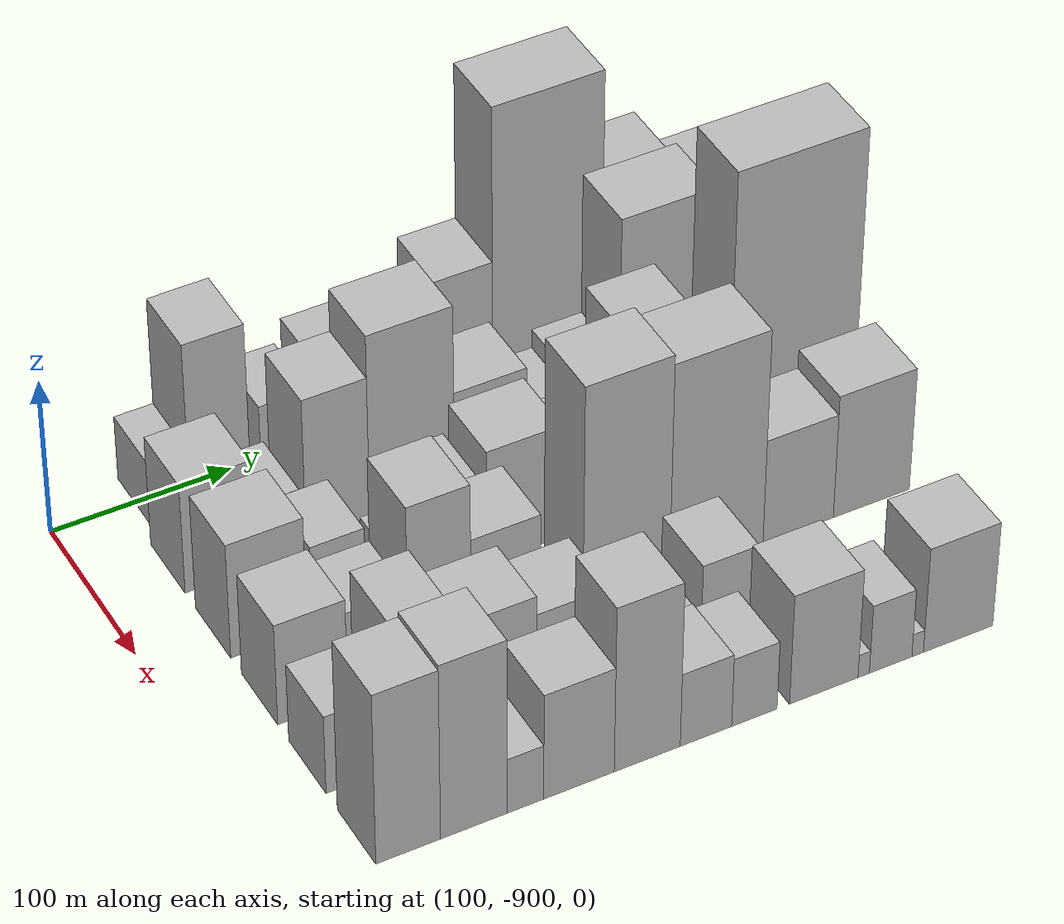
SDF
<sdf version="1.6">
 <world name="default">
  <model name="building_1">
   <static>1</static>
   <pose>100.0000 -843.1240 0 0.000000 0.000000 0.000000</pose>
   <link name="link">
    <pose>0 0 21.00 0 0 0</pose>
    <collision name="collision"><geometry><box><size>40.0000 21.7520 42.0000</size></box></geometry></collision>
    <visual name="visual">
     <cast_shadows>0</cast_shadows>
     <geometry><box><size>40.0000 21.7520 42.0000</size></box></geometry>
     <material>
      <script>
       <uri>model://HANNAS_wall/materials/scripts</uri>
       <uri>model://HANNAS_wall/materials/textures</uri>
       <name>vrc/HANNAS_wall</name>
      </script>
     </material>
    </visual>
   </link>
  </model>
  <model name="building_2">
   <static>1</static>
   <pose>100.0000 -815.2978 0 0.000000 0.000000 0.000000</pose>
   <link name="link">
    <pose>0 0 55.50 0 0 0</pose>
    <collision name="collision"><geometry><box><size>40.0000 33.9005 111.0000</size></box></geometry></collision>
    <visual name="visual">
     <cast_shadows>0</cast_shadows>
     <geometry><box><size>40.0000 33.9005 111.0000</size></box></geometry>
     <material>
      <script>
       <uri>model://HANNAS_wall/materials/scripts</uri>
       <uri>model://HANNAS_wall/materials/textures</uri>
       <name>vrc/HANNAS_wall</name>
      </script>
     </material>
    </visual>
   </link>
  </model>
  <model name="building_3">
   <static>1</static>
   <pose>100.0000 -778.2248 0 0.000000 0.000000 0.000000</pose>
   <link name="link">
    <pose>0 0 27.00 0 0 0</pose>
    <collision name="collision"><geometry><box><size>40.0000 28.2455 54.0000</size></box></geometry></collision>
    <visual name="visual">
     <cast_shadows>0</cast_shadows>
     <geometry><box><size>40.0000 28.2455 54.0000</size></box></geometry>
     <material>
      <script>
       <uri>model://HANNAS_wall/materials/scripts</uri>
       <uri>model://HANNAS_wall/materials/textures</uri>
       <name>vrc/HANNAS_wall</name>
      </script>
     </material>
    </visual>
   </link>
  </model>
  <model name="building_4">
   <static>1</static>
   <pose>100.0000 -742.1856 0 0.000000 0.000000 0.000000</pose>
   <link name="link">
    <pose>0 0 34.50 0 0 0</pose>
    <collision name="collision"><geometry><box><size>40.0000 35.8328 69.0000</size></box></geometry></collision>
    <visual name="visual">
     <cast_shadows>0</cast_shadows>
     <geometry><box><size>40.0000 35.8328 69.0000</size></box></geometry>
     <material>
      <script>
       <uri>model://HANNAS_wall/materials/scripts</uri>
       <uri>model://HANNAS_wall/materials/textures</uri>
       <name>vrc/HANNAS_wall</name>
      </script>
     </material>
    </visual>
   </link>
  </model>
  <model name="building_5">
   <static>1</static>
   <pose>100.0000 -708.8529 0 0.000000 0.000000 0.000000</pose>
   <link name="link">
    <pose>0 0 24.00 0 0 0</pose>
    <collision name="collision"><geometry><box><size>40.0000 24.8327 48.0000</size></box></geometry></collision>
    <visual name="visual">
     <cast_shadows>0</cast_shadows>
     <geometry><box><size>40.0000 24.8327 48.0000</size></box></geometry>
     <material>
      <script>
       <uri>model://HANNAS_wall/materials/scripts</uri>
       <uri>model://HANNAS_wall/materials/textures</uri>
       <name>vrc/HANNAS_wall</name>
      </script>
     </material>
    </visual>
   </link>
  </model>
  <model name="building_6">
   <static>1</static>
   <pose>100.0000 -676.8065 0 0.000000 0.000000 0.000000</pose>
   <link name="link">
    <pose>0 0 48.00 0 0 0</pose>
    <collision name="collision"><geometry><box><size>40.0000 33.2600 96.0000</size></box></geometry></collision>
    <visual name="visual">
     <cast_shadows>0</cast_shadows>
     <geometry><box><size>40.0000 33.2600 96.0000</size></box></geometry>
     <material>
      <script>
       <uri>model://HANNAS_wall/materials/scripts</uri>
       <uri>model://HANNAS_wall/materials/textures</uri>
       <name>vrc/HANNAS_wall</name>
      </script>
     </material>
    </visual>
   </link>
  </model>
  <model name="building_7">
   <static>1</static>
   <pose>100.0000 -628.3598 0 0.000000 0.000000 0.000000</pose>
   <link name="link">
    <pose>0 0 97.50 0 0 0</pose>
    <collision name="collision"><geometry><box><size>40.0000 63.6335 195.0000</size></box></geometry></collision>
    <visual name="visual">
     <cast_shadows>0</cast_shadows>
     <geometry><box><size>40.0000 63.6335 195.0000</size></box></geometry>
     <material>
      <script>
       <uri>model://HANNAS_wall/materials/scripts</uri>
       <uri>model://HANNAS_wall/materials/textures</uri>
       <name>vrc/HANNAS_wall</name>
      </script>
     </material>
    </visual>
   </link>
  </model>
  <model name="building_8">
   <static>1</static>
   <pose>100.0000 -576.6208 0 0.000000 0.000000 0.000000</pose>
   <link name="link">
    <pose>0 0 63.00 0 0 0</pose>
    <collision name="collision"><geometry><box><size>40.0000 39.8445 126.0000</size></box></geometry></collision>
    <visual name="visual">
     <cast_shadows>0</cast_shadows>
     <geometry><box><size>40.0000 39.8445 126.0000</size></box></geometry>
     <material>
      <script>
       <uri>model://HANNAS_wall/materials/scripts</uri>
       <uri>model://HANNAS_wall/materials/textures</uri>
       <name>vrc/HANNAS_wall</name>
      </script>
     </material>
    </visual>
   </link>
  </model>
  <model name="building_9">
   <static>1</static>
   <pose>100.0000 -552.2339 0 0.000000 0.000000 0.000000</pose>
   <link name="link">
    <pose>0 0 9.00 0 0 0</pose>
    <collision name="collision"><geometry><box><size>40.0000 8.9292 18.0000</size></box></geometry></collision>
    <visual name="visual">
     <cast_shadows>0</cast_shadows>
     <geometry><box><size>40.0000 8.9292 18.0000</size></box></geometry>
     <material>
      <script>
       <uri>model://HANNAS_wall/materials/scripts</uri>
       <uri>model://HANNAS_wall/materials/textures</uri>
       <name>vrc/HANNAS_wall</name>
      </script>
     </material>
    </visual>
   </link>
  </model>
  <model name="building_10">
   <static>1</static>
   <pose>100.0000 -531.4667 0 0.000000 0.000000 0.000000</pose>
   <link name="link">
    <pose>0 0 51.00 0 0 0</pose>
    <collision name="collision"><geometry><box><size>40.0000 32.6054 102.0000</size></box></geometry></collision>
    <visual name="visual">
     <cast_shadows>0</cast_shadows>
     <geometry><box><size>40.0000 32.6054 102.0000</size></box></geometry>
     <material>
      <script>
       <uri>model://HANNAS_wall/materials/scripts</uri>
       <uri>model://HANNAS_wall/materials/textures</uri>
       <name>vrc/HANNAS_wall</name>
      </script>
     </material>
    </visual>
   </link>
  </model>
  <model name="building_48">
   <static>1</static>
   <pose>152.0000 -840.8286 0 0.000000 0.000000 0.000000</pose>
   <link name="link">
    <pose>0 0 36.00 0 0 0</pose>
    <collision name="collision"><geometry><box><size>40.0000 38.3429 72.0000</size></box></geometry></collision>
    <visual name="visual">
     <cast_shadows>0</cast_shadows>
     <geometry><box><size>40.0000 38.3429 72.0000</size></box></geometry>
     <material>
      <script>
       <uri>model://HANNAS_wall/materials/scripts</uri>
       <uri>model://HANNAS_wall/materials/textures</uri>
       <name>vrc/HANNAS_wall</name>
      </script>
     </material>
    </visual>
   </link>
  </model>
  <model name="building_49">
   <static>1</static>
   <pose>152.0000 -806.8243 0 0.000000 0.000000 0.000000</pose>
   <link name="link">
    <pose>0 0 21.00 0 0 0</pose>
    <collision name="collision"><geometry><box><size>40.0000 21.6656 42.0000</size></box></geometry></collision>
    <visual name="visual">
     <cast_shadows>0</cast_shadows>
     <geometry><box><size>40.0000 21.6656 42.0000</size></box></geometry>
     <material>
      <script>
       <uri>model://HANNAS_wall/materials/scripts</uri>
       <uri>model://HANNAS_wall/materials/textures</uri>
       <name>vrc/HANNAS_wall</name>
      </script>
     </material>
    </visual>
   </link>
  </model>
  <model name="building_50">
   <static>1</static>
   <pose>152.0000 -775.1812 0 0.000000 0.000000 0.000000</pose>
   <link name="link">
    <pose>0 0 49.50 0 0 0</pose>
    <collision name="collision"><geometry><box><size>40.0000 35.6205 99.0000</size></box></geometry></collision>
    <visual name="visual">
     <cast_shadows>0</cast_shadows>
     <geometry><box><size>40.0000 35.6205 99.0000</size></box></geometry>
     <material>
      <script>
       <uri>model://HANNAS_wall/materials/scripts</uri>
       <uri>model://HANNAS_wall/materials/textures</uri>
       <name>vrc/HANNAS_wall</name>
      </script>
     </material>
    </visual>
   </link>
  </model>
  <model name="building_51">
   <static>1</static>
   <pose>152.0000 -733.4415 0 0.000000 0.000000 0.000000</pose>
   <link name="link">
    <pose>0 0 63.00 0 0 0</pose>
    <collision name="collision"><geometry><box><size>40.0000 47.8591 126.0000</size></box></geometry></collision>
    <visual name="visual">
     <cast_shadows>0</cast_shadows>
     <geometry><box><size>40.0000 47.8591 126.0000</size></box></geometry>
     <material>
      <script>
       <uri>model://HANNAS_wall/materials/scripts</uri>
       <uri>model://HANNAS_wall/materials/textures</uri>
       <name>vrc/HANNAS_wall</name>
      </script>
     </material>
    </visual>
   </link>
  </model>
  <model name="building_52">
   <static>1</static>
   <pose>152.0000 -688.9490 0 0.000000 0.000000 0.000000</pose>
   <link name="link">
    <pose>0 0 34.50 0 0 0</pose>
    <collision name="collision"><geometry><box><size>40.0000 41.1259 69.0000</size></box></geometry></collision>
    <visual name="visual">
     <cast_shadows>0</cast_shadows>
     <geometry><box><size>40.0000 41.1259 69.0000</size></box></geometry>
     <material>
      <script>
       <uri>model://HANNAS_wall/materials/scripts</uri>
       <uri>model://HANNAS_wall/materials/textures</uri>
       <name>vrc/HANNAS_wall</name>
      </script>
     </material>
    </visual>
   </link>
  </model>
  <model name="building_53">
   <static>1</static>
   <pose>152.0000 -656.1648 0 0.000000 0.000000 0.000000</pose>
   <link name="link">
    <pose>0 0 21.00 0 0 0</pose>
    <collision name="collision"><geometry><box><size>40.0000 24.4425 42.0000</size></box></geometry></collision>
    <visual name="visual">
     <cast_shadows>0</cast_shadows>
     <geometry><box><size>40.0000 24.4425 42.0000</size></box></geometry>
     <material>
      <script>
       <uri>model://HANNAS_wall/materials/scripts</uri>
       <uri>model://HANNAS_wall/materials/textures</uri>
       <name>vrc/HANNAS_wall</name>
      </script>
     </material>
    </visual>
   </link>
  </model>
  <model name="building_54">
   <static>1</static>
   <pose>152.0000 -629.5401 0 0.000000 0.000000 0.000000</pose>
   <link name="link">
    <pose>0 0 27.00 0 0 0</pose>
    <collision name="collision"><geometry><box><size>40.0000 28.8069 54.0000</size></box></geometry></collision>
    <visual name="visual">
     <cast_shadows>0</cast_shadows>
     <geometry><box><size>40.0000 28.8069 54.0000</size></box></geometry>
     <material>
      <script>
       <uri>model://HANNAS_wall/materials/scripts</uri>
       <uri>model://HANNAS_wall/materials/textures</uri>
       <name>vrc/HANNAS_wall</name>
      </script>
     </material>
    </visual>
   </link>
  </model>
  <model name="building_55">
   <static>1</static>
   <pose>152.0000 -588.4595 0 0.000000 0.000000 0.000000</pose>
   <link name="link">
    <pose>0 0 72.00 0 0 0</pose>
    <collision name="collision"><geometry><box><size>40.0000 53.3543 144.0000</size></box></geometry></collision>
    <visual name="visual">
     <cast_shadows>0</cast_shadows>
     <geometry><box><size>40.0000 53.3543 144.0000</size></box></geometry>
     <material>
      <script>
       <uri>model://HANNAS_wall/materials/scripts</uri>
       <uri>model://HANNAS_wall/materials/textures</uri>
       <name>vrc/HANNAS_wall</name>
      </script>
     </material>
    </visual>
   </link>
  </model>
  <model name="building_56">
   <static>1</static>
   <pose>152.0000 -552.4265 0 0.000000 0.000000 0.000000</pose>
   <link name="link">
    <pose>0 0 16.50 0 0 0</pose>
    <collision name="collision"><geometry><box><size>40.0000 18.7116 33.0000</size></box></geometry></collision>
    <visual name="visual">
     <cast_shadows>0</cast_shadows>
     <geometry><box><size>40.0000 18.7116 33.0000</size></box></geometry>
     <material>
      <script>
       <uri>model://HANNAS_wall/materials/scripts</uri>
       <uri>model://HANNAS_wall/materials/textures</uri>
       <name>vrc/HANNAS_wall</name>
      </script>
     </material>
    </visual>
   </link>
  </model>
  <model name="building_57">
   <static>1</static>
   <pose>152.0000 -538.7161 0 0.000000 0.000000 0.000000</pose>
   <link name="link">
    <pose>0 0 10.50 0 0 0</pose>
    <collision name="collision"><geometry><box><size>40.0000 8.7092 21.0000</size></box></geometry></collision>
    <visual name="visual">
     <cast_shadows>0</cast_shadows>
     <geometry><box><size>40.0000 8.7092 21.0000</size></box></geometry>
     <material>
      <script>
       <uri>model://HANNAS_wall/materials/scripts</uri>
       <uri>model://HANNAS_wall/materials/textures</uri>
       <name>vrc/HANNAS_wall</name>
      </script>
     </material>
    </visual>
   </link>
  </model>
  <model name="building_58">
   <static>1</static>
   <pose>152.0000 -522.2402 0 0.000000 0.000000 0.000000</pose>
   <link name="link">
    <pose>0 0 15.00 0 0 0</pose>
    <collision name="collision"><geometry><box><size>40.0000 16.2424 30.0000</size></box></geometry></collision>
    <visual name="visual">
     <cast_shadows>0</cast_shadows>
     <geometry><box><size>40.0000 16.2424 30.0000</size></box></geometry>
     <material>
      <script>
       <uri>model://HANNAS_wall/materials/scripts</uri>
       <uri>model://HANNAS_wall/materials/textures</uri>
       <name>vrc/HANNAS_wall</name>
      </script>
     </material>
    </visual>
   </link>
  </model>
  <model name="building_100">
   <static>1</static>
   <pose>204.0000 -839.2576 0 0.000000 0.000000 0.000000</pose>
   <link name="link">
    <pose>0 0 37.50 0 0 0</pose>
    <collision name="collision"><geometry><box><size>40.0000 41.4847 75.0000</size></box></geometry></collision>
    <visual name="visual">
     <cast_shadows>0</cast_shadows>
     <geometry><box><size>40.0000 41.4847 75.0000</size></box></geometry>
     <material>
      <script>
       <uri>model://HANNAS_wall/materials/scripts</uri>
       <uri>model://HANNAS_wall/materials/textures</uri>
       <name>vrc/HANNAS_wall</name>
      </script>
     </material>
    </visual>
   </link>
  </model>
  <model name="building_101">
   <static>1</static>
   <pose>204.0000 -800.6998 0 0.000000 0.000000 0.000000</pose>
   <link name="link">
    <pose>0 0 27.00 0 0 0</pose>
    <collision name="collision"><geometry><box><size>40.0000 29.6310 54.0000</size></box></geometry></collision>
    <visual name="visual">
     <cast_shadows>0</cast_shadows>
     <geometry><box><size>40.0000 29.6310 54.0000</size></box></geometry>
     <material>
      <script>
       <uri>model://HANNAS_wall/materials/scripts</uri>
       <uri>model://HANNAS_wall/materials/textures</uri>
       <name>vrc/HANNAS_wall</name>
      </script>
     </material>
    </visual>
   </link>
  </model>
  <model name="building_102">
   <static>1</static>
   <pose>204.0000 -780.8470 0 0.000000 0.000000 0.000000</pose>
   <link name="link">
    <pose>0 0 12.00 0 0 0</pose>
    <collision name="collision"><geometry><box><size>40.0000 10.0747 24.0000</size></box></geometry></collision>
    <visual name="visual">
     <cast_shadows>0</cast_shadows>
     <geometry><box><size>40.0000 10.0747 24.0000</size></box></geometry>
     <material>
      <script>
       <uri>model://HANNAS_wall/materials/scripts</uri>
       <uri>model://HANNAS_wall/materials/textures</uri>
       <name>vrc/HANNAS_wall</name>
      </script>
     </material>
    </visual>
   </link>
  </model>
  <model name="building_103">
   <static>1</static>
   <pose>204.0000 -764.1237 0 0.000000 0.000000 0.000000</pose>
   <link name="link">
    <pose>0 0 10.50 0 0 0</pose>
    <collision name="collision"><geometry><box><size>40.0000 9.3718 21.0000</size></box></geometry></collision>
    <visual name="visual">
     <cast_shadows>0</cast_shadows>
     <geometry><box><size>40.0000 9.3718 21.0000</size></box></geometry>
     <material>
      <script>
       <uri>model://HANNAS_wall/materials/scripts</uri>
       <uri>model://HANNAS_wall/materials/textures</uri>
       <name>vrc/HANNAS_wall</name>
      </script>
     </material>
    </visual>
   </link>
  </model>
  <model name="building_104">
   <static>1</static>
   <pose>204.0000 -736.0776 0 0.000000 0.000000 0.000000</pose>
   <link name="link">
    <pose>0 0 28.50 0 0 0</pose>
    <collision name="collision"><geometry><box><size>40.0000 28.7203 57.0000</size></box></geometry></collision>
    <visual name="visual">
     <cast_shadows>0</cast_shadows>
     <geometry><box><size>40.0000 28.7203 57.0000</size></box></geometry>
     <material>
      <script>
       <uri>model://HANNAS_wall/materials/scripts</uri>
       <uri>model://HANNAS_wall/materials/textures</uri>
       <name>vrc/HANNAS_wall</name>
      </script>
     </material>
    </visual>
   </link>
  </model>
  <model name="building_105">
   <static>1</static>
   <pose>204.0000 -697.6255 0 0.000000 0.000000 0.000000</pose>
   <link name="link">
    <pose>0 0 37.50 0 0 0</pose>
    <collision name="collision"><geometry><box><size>40.0000 42.1840 75.0000</size></box></geometry></collision>
    <visual name="visual">
     <cast_shadows>0</cast_shadows>
     <geometry><box><size>40.0000 42.1840 75.0000</size></box></geometry>
     <material>
      <script>
       <uri>model://HANNAS_wall/materials/scripts</uri>
       <uri>model://HANNAS_wall/materials/textures</uri>
       <name>vrc/HANNAS_wall</name>
      </script>
     </material>
    </visual>
   </link>
  </model>
  <model name="building_106">
   <static>1</static>
   <pose>204.0000 -660.6348 0 0.000000 0.000000 0.000000</pose>
   <link name="link">
    <pose>0 0 28.50 0 0 0</pose>
    <collision name="collision"><geometry><box><size>40.0000 31.7973 57.0000</size></box></geometry></collision>
    <visual name="visual">
     <cast_shadows>0</cast_shadows>
     <geometry><box><size>40.0000 31.7973 57.0000</size></box></geometry>
     <material>
      <script>
       <uri>model://HANNAS_wall/materials/scripts</uri>
       <uri>model://HANNAS_wall/materials/textures</uri>
       <name>vrc/HANNAS_wall</name>
      </script>
     </material>
    </visual>
   </link>
  </model>
  <model name="building_107">
   <static>1</static>
   <pose>204.0000 -622.4457 0 0.000000 0.000000 0.000000</pose>
   <link name="link">
    <pose>0 0 60.00 0 0 0</pose>
    <collision name="collision"><geometry><box><size>40.0000 38.5811 120.0000</size></box></geometry></collision>
    <visual name="visual">
     <cast_shadows>0</cast_shadows>
     <geometry><box><size>40.0000 38.5811 120.0000</size></box></geometry>
     <material>
      <script>
       <uri>model://HANNAS_wall/materials/scripts</uri>
       <uri>model://HANNAS_wall/materials/textures</uri>
       <name>vrc/HANNAS_wall</name>
      </script>
     </material>
    </visual>
   </link>
  </model>
  <model name="building_108">
   <static>1</static>
   <pose>204.0000 -597.7264 0 0.000000 0.000000 0.000000</pose>
   <link name="link">
    <pose>0 0 12.00 0 0 0</pose>
    <collision name="collision"><geometry><box><size>40.0000 10.8574 24.0000</size></box></geometry></collision>
    <visual name="visual">
     <cast_shadows>0</cast_shadows>
     <geometry><box><size>40.0000 10.8574 24.0000</size></box></geometry>
     <material>
      <script>
       <uri>model://HANNAS_wall/materials/scripts</uri>
       <uri>model://HANNAS_wall/materials/textures</uri>
       <name>vrc/HANNAS_wall</name>
      </script>
     </material>
    </visual>
   </link>
  </model>
  <model name="building_109">
   <static>1</static>
   <pose>204.0000 -589.0380 0 0.000000 0.000000 0.000000</pose>
   <link name="link">
    <pose>0 0 7.50 0 0 0</pose>
    <collision name="collision"><geometry><box><size>40.0000 6.5195 15.0000</size></box></geometry></collision>
    <visual name="visual">
     <cast_shadows>0</cast_shadows>
     <geometry><box><size>40.0000 6.5195 15.0000</size></box></geometry>
     <material>
      <script>
       <uri>model://HANNAS_wall/materials/scripts</uri>
       <uri>model://HANNAS_wall/materials/textures</uri>
       <name>vrc/HANNAS_wall</name>
      </script>
     </material>
    </visual>
   </link>
  </model>
  <model name="building_110">
   <static>1</static>
   <pose>204.0000 -543.7826 0 0.000000 0.000000 0.000000</pose>
   <link name="link">
    <pose>0 0 99.00 0 0 0</pose>
    <collision name="collision"><geometry><box><size>40.0000 73.9914 198.0000</size></box></geometry></collision>
    <visual name="visual">
     <cast_shadows>0</cast_shadows>
     <geometry><box><size>40.0000 73.9914 198.0000</size></box></geometry>
     <material>
      <script>
       <uri>model://HANNAS_wall/materials/scripts</uri>
       <uri>model://HANNAS_wall/materials/textures</uri>
       <name>vrc/HANNAS_wall</name>
      </script>
     </material>
    </visual>
   </link>
  </model>
  <model name="building_152">
   <static>1</static>
   <pose>256.0000 -841.1262 0 0.000000 0.000000 0.000000</pose>
   <link name="link">
    <pose>0 0 33.00 0 0 0</pose>
    <collision name="collision"><geometry><box><size>40.0000 37.7476 66.0000</size></box></geometry></collision>
    <visual name="visual">
     <cast_shadows>0</cast_shadows>
     <geometry><box><size>40.0000 37.7476 66.0000</size></box></geometry>
     <material>
      <script>
       <uri>model://HANNAS_wall/materials/scripts</uri>
       <uri>model://HANNAS_wall/materials/textures</uri>
       <name>vrc/HANNAS_wall</name>
      </script>
     </material>
    </visual>
   </link>
  </model>
  <model name="building_153">
   <static>1</static>
   <pose>256.0000 -805.7088 0 0.000000 0.000000 0.000000</pose>
   <link name="link">
    <pose>0 0 28.50 0 0 0</pose>
    <collision name="collision"><geometry><box><size>40.0000 33.0871 57.0000</size></box></geometry></collision>
    <visual name="visual">
     <cast_shadows>0</cast_shadows>
     <geometry><box><size>40.0000 33.0871 57.0000</size></box></geometry>
     <material>
      <script>
       <uri>model://HANNAS_wall/materials/scripts</uri>
       <uri>model://HANNAS_wall/materials/textures</uri>
       <name>vrc/HANNAS_wall</name>
      </script>
     </material>
    </visual>
   </link>
  </model>
  <model name="building_154">
   <static>1</static>
   <pose>256.0000 -771.9506 0 0.000000 0.000000 0.000000</pose>
   <link name="link">
    <pose>0 0 55.50 0 0 0</pose>
    <collision name="collision"><geometry><box><size>40.0000 34.4293 111.0000</size></box></geometry></collision>
    <visual name="visual">
     <cast_shadows>0</cast_shadows>
     <geometry><box><size>40.0000 34.4293 111.0000</size></box></geometry>
     <material>
      <script>
       <uri>model://HANNAS_wall/materials/scripts</uri>
       <uri>model://HANNAS_wall/materials/textures</uri>
       <name>vrc/HANNAS_wall</name>
      </script>
     </material>
    </visual>
   </link>
  </model>
  <model name="building_155">
   <static>1</static>
   <pose>256.0000 -735.5502 0 0.000000 0.000000 0.000000</pose>
   <link name="link">
    <pose>0 0 37.50 0 0 0</pose>
    <collision name="collision"><geometry><box><size>40.0000 38.3713 75.0000</size></box></geometry></collision>
    <visual name="visual">
     <cast_shadows>0</cast_shadows>
     <geometry><box><size>40.0000 38.3713 75.0000</size></box></geometry>
     <material>
      <script>
       <uri>model://HANNAS_wall/materials/scripts</uri>
       <uri>model://HANNAS_wall/materials/textures</uri>
       <name>vrc/HANNAS_wall</name>
      </script>
     </material>
    </visual>
   </link>
  </model>
  <model name="building_156">
   <static>1</static>
   <pose>256.0000 -706.0229 0 0.000000 0.000000 0.000000</pose>
   <link name="link">
    <pose>0 0 10.50 0 0 0</pose>
    <collision name="collision"><geometry><box><size>40.0000 8.6833 21.0000</size></box></geometry></collision>
    <visual name="visual">
     <cast_shadows>0</cast_shadows>
     <geometry><box><size>40.0000 8.6833 21.0000</size></box></geometry>
     <material>
      <script>
       <uri>model://HANNAS_wall/materials/scripts</uri>
       <uri>model://HANNAS_wall/materials/textures</uri>
       <name>vrc/HANNAS_wall</name>
      </script>
     </material>
    </visual>
   </link>
  </model>
  <model name="building_157">
   <static>1</static>
   <pose>256.0000 -668.2342 0 0.000000 0.000000 0.000000</pose>
   <link name="link">
    <pose>0 0 73.50 0 0 0</pose>
    <collision name="collision"><geometry><box><size>40.0000 48.8941 147.0000</size></box></geometry></collision>
    <visual name="visual">
     <cast_shadows>0</cast_shadows>
     <geometry><box><size>40.0000 48.8941 147.0000</size></box></geometry>
     <material>
      <script>
       <uri>model://HANNAS_wall/materials/scripts</uri>
       <uri>model://HANNAS_wall/materials/textures</uri>
       <name>vrc/HANNAS_wall</name>
      </script>
     </material>
    </visual>
   </link>
  </model>
  <model name="building_158">
   <static>1</static>
   <pose>256.0000 -616.9332 0 0.000000 0.000000 0.000000</pose>
   <link name="link">
    <pose>0 0 70.50 0 0 0</pose>
    <collision name="collision"><geometry><box><size>40.0000 53.7079 141.0000</size></box></geometry></collision>
    <visual name="visual">
     <cast_shadows>0</cast_shadows>
     <geometry><box><size>40.0000 53.7079 141.0000</size></box></geometry>
     <material>
      <script>
       <uri>model://HANNAS_wall/materials/scripts</uri>
       <uri>model://HANNAS_wall/materials/textures</uri>
       <name>vrc/HANNAS_wall</name>
      </script>
     </material>
    </visual>
   </link>
  </model>
  <model name="building_159">
   <static>1</static>
   <pose>256.0000 -569.6194 0 0.000000 0.000000 0.000000</pose>
   <link name="link">
    <pose>0 0 34.50 0 0 0</pose>
    <collision name="collision"><geometry><box><size>40.0000 40.9197 69.0000</size></box></geometry></collision>
    <visual name="visual">
     <cast_shadows>0</cast_shadows>
     <geometry><box><size>40.0000 40.9197 69.0000</size></box></geometry>
     <material>
      <script>
       <uri>model://HANNAS_wall/materials/scripts</uri>
       <uri>model://HANNAS_wall/materials/textures</uri>
       <name>vrc/HANNAS_wall</name>
      </script>
     </material>
    </visual>
   </link>
  </model>
  <model name="building_160">
   <static>1</static>
   <pose>256.0000 -526.8195 0 0.000000 0.000000 0.000000</pose>
   <link name="link">
    <pose>0 0 40.50 0 0 0</pose>
    <collision name="collision"><geometry><box><size>40.0000 44.6800 81.0000</size></box></geometry></collision>
    <visual name="visual">
     <cast_shadows>0</cast_shadows>
     <geometry><box><size>40.0000 44.6800 81.0000</size></box></geometry>
     <material>
      <script>
       <uri>model://HANNAS_wall/materials/scripts</uri>
       <uri>model://HANNAS_wall/materials/textures</uri>
       <name>vrc/HANNAS_wall</name>
      </script>
     </material>
    </visual>
   </link>
  </model>
  <model name="building_200">
   <static>1</static>
   <pose>308.0000 -846.1163 0 0.000000 0.000000 0.000000</pose>
   <link name="link">
    <pose>0 0 25.50 0 0 0</pose>
    <collision name="collision"><geometry><box><size>40.0000 27.7675 51.0000</size></box></geometry></collision>
    <visual name="visual">
     <cast_shadows>0</cast_shadows>
     <geometry><box><size>40.0000 27.7675 51.0000</size></box></geometry>
     <material>
      <script>
       <uri>model://HANNAS_wall/materials/scripts</uri>
       <uri>model://HANNAS_wall/materials/textures</uri>
       <name>vrc/HANNAS_wall</name>
      </script>
     </material>
    </visual>
   </link>
  </model>
  <model name="building_201">
   <static>1</static>
   <pose>308.0000 -828.6124 0 0.000000 0.000000 0.000000</pose>
   <link name="link">
    <pose>0 0 9.00 0 0 0</pose>
    <collision name="collision"><geometry><box><size>40.0000 7.2403 18.0000</size></box></geometry></collision>
    <visual name="visual">
     <cast_shadows>0</cast_shadows>
     <geometry><box><size>40.0000 7.2403 18.0000</size></box></geometry>
     <material>
      <script>
       <uri>model://HANNAS_wall/materials/scripts</uri>
       <uri>model://HANNAS_wall/materials/textures</uri>
       <name>vrc/HANNAS_wall</name>
      </script>
     </material>
    </visual>
   </link>
  </model>
  <model name="building_202">
   <static>1</static>
   <pose>308.0000 -809.4110 0 0.000000 0.000000 0.000000</pose>
   <link name="link">
    <pose>0 0 48.00 0 0 0</pose>
    <collision name="collision"><geometry><box><size>40.0000 31.1625 96.0000</size></box></geometry></collision>
    <visual name="visual">
     <cast_shadows>0</cast_shadows>
     <geometry><box><size>40.0000 31.1625 96.0000</size></box></geometry>
     <material>
      <script>
       <uri>model://HANNAS_wall/materials/scripts</uri>
       <uri>model://HANNAS_wall/materials/textures</uri>
       <name>vrc/HANNAS_wall</name>
      </script>
     </material>
    </visual>
   </link>
  </model>
  <model name="building_203">
   <static>1</static>
   <pose>308.0000 -767.7780 0 0.000000 0.000000 0.000000</pose>
   <link name="link">
    <pose>0 0 39.00 0 0 0</pose>
    <collision name="collision"><geometry><box><size>40.0000 42.1035 78.0000</size></box></geometry></collision>
    <visual name="visual">
     <cast_shadows>0</cast_shadows>
     <geometry><box><size>40.0000 42.1035 78.0000</size></box></geometry>
     <material>
      <script>
       <uri>model://HANNAS_wall/materials/scripts</uri>
       <uri>model://HANNAS_wall/materials/textures</uri>
       <name>vrc/HANNAS_wall</name>
      </script>
     </material>
    </visual>
   </link>
  </model>
  <model name="building_204">
   <static>1</static>
   <pose>308.0000 -727.0313 0 0.000000 0.000000 0.000000</pose>
   <link name="link">
    <pose>0 0 33.00 0 0 0</pose>
    <collision name="collision"><geometry><box><size>40.0000 39.3899 66.0000</size></box></geometry></collision>
    <visual name="visual">
     <cast_shadows>0</cast_shadows>
     <geometry><box><size>40.0000 39.3899 66.0000</size></box></geometry>
     <material>
      <script>
       <uri>model://HANNAS_wall/materials/scripts</uri>
       <uri>model://HANNAS_wall/materials/textures</uri>
       <name>vrc/HANNAS_wall</name>
      </script>
     </material>
    </visual>
   </link>
  </model>
  <model name="building_205">
   <static>1</static>
   <pose>308.0000 -687.2367 0 0.000000 0.000000 0.000000</pose>
   <link name="link">
    <pose>0 0 19.50 0 0 0</pose>
    <collision name="collision"><geometry><box><size>40.0000 20.1993 39.0000</size></box></geometry></collision>
    <visual name="visual">
     <cast_shadows>0</cast_shadows>
     <geometry><box><size>40.0000 20.1993 39.0000</size></box></geometry>
     <material>
      <script>
       <uri>model://HANNAS_wall/materials/scripts</uri>
       <uri>model://HANNAS_wall/materials/textures</uri>
       <name>vrc/HANNAS_wall</name>
      </script>
     </material>
    </visual>
   </link>
  </model>
  <model name="building_206">
   <static>1</static>
   <pose>308.0000 -661.3620 0 0.000000 0.000000 0.000000</pose>
   <link name="link">
    <pose>0 0 12.00 0 0 0</pose>
    <collision name="collision"><geometry><box><size>40.0000 11.5502 24.0000</size></box></geometry></collision>
    <visual name="visual">
     <cast_shadows>0</cast_shadows>
     <geometry><box><size>40.0000 11.5502 24.0000</size></box></geometry>
     <material>
      <script>
       <uri>model://HANNAS_wall/materials/scripts</uri>
       <uri>model://HANNAS_wall/materials/textures</uri>
       <name>vrc/HANNAS_wall</name>
      </script>
     </material>
    </visual>
   </link>
  </model>
  <model name="building_207">
   <static>1</static>
   <pose>308.0000 -639.8673 0 0.000000 0.000000 0.000000</pose>
   <link name="link">
    <pose>0 0 28.50 0 0 0</pose>
    <collision name="collision"><geometry><box><size>40.0000 31.4390 57.0000</size></box></geometry></collision>
    <visual name="visual">
     <cast_shadows>0</cast_shadows>
     <geometry><box><size>40.0000 31.4390 57.0000</size></box></geometry>
     <material>
      <script>
       <uri>model://HANNAS_wall/materials/scripts</uri>
       <uri>model://HANNAS_wall/materials/textures</uri>
       <name>vrc/HANNAS_wall</name>
      </script>
     </material>
    </visual>
   </link>
  </model>
  <model name="building_252">
   <static>1</static>
   <pose>360.0000 -842.9169 0 0.000000 0.000000 0.000000</pose>
   <link name="link">
    <pose>0 0 55.50 0 0 0</pose>
    <collision name="collision"><geometry><box><size>40.0000 34.1663 111.0000</size></box></geometry></collision>
    <visual name="visual">
     <cast_shadows>0</cast_shadows>
     <geometry><box><size>40.0000 34.1663 111.0000</size></box></geometry>
     <material>
      <script>
       <uri>model://HANNAS_wall/materials/scripts</uri>
       <uri>model://HANNAS_wall/materials/textures</uri>
       <name>vrc/HANNAS_wall</name>
      </script>
     </material>
    </visual>
   </link>
  </model>
  <model name="building_253">
   <static>1</static>
   <pose>360.0000 -808.0640 0 0.000000 0.000000 0.000000</pose>
   <link name="link">
    <pose>0 0 57.00 0 0 0</pose>
    <collision name="collision"><geometry><box><size>40.0000 35.5394 114.0000</size></box></geometry></collision>
    <visual name="visual">
     <cast_shadows>0</cast_shadows>
     <geometry><box><size>40.0000 35.5394 114.0000</size></box></geometry>
     <material>
      <script>
       <uri>model://HANNAS_wall/materials/scripts</uri>
       <uri>model://HANNAS_wall/materials/textures</uri>
       <name>vrc/HANNAS_wall</name>
      </script>
     </material>
    </visual>
   </link>
  </model>
  <model name="building_254">
   <static>1</static>
   <pose>360.0000 -780.5323 0 0.000000 0.000000 0.000000</pose>
   <link name="link">
    <pose>0 0 18.00 0 0 0</pose>
    <collision name="collision"><geometry><box><size>40.0000 19.5241 36.0000</size></box></geometry></collision>
    <visual name="visual">
     <cast_shadows>0</cast_shadows>
     <geometry><box><size>40.0000 19.5241 36.0000</size></box></geometry>
     <material>
      <script>
       <uri>model://HANNAS_wall/materials/scripts</uri>
       <uri>model://HANNAS_wall/materials/textures</uri>
       <name>vrc/HANNAS_wall</name>
      </script>
     </material>
    </visual>
   </link>
  </model>
  <model name="building_255">
   <static>1</static>
   <pose>360.0000 -751.6801 0 0.000000 0.000000 0.000000</pose>
   <link name="link">
    <pose>0 0 34.50 0 0 0</pose>
    <collision name="collision"><geometry><box><size>40.0000 38.1803 69.0000</size></box></geometry></collision>
    <visual name="visual">
     <cast_shadows>0</cast_shadows>
     <geometry><box><size>40.0000 38.1803 69.0000</size></box></geometry>
     <material>
      <script>
       <uri>model://HANNAS_wall/materials/scripts</uri>
       <uri>model://HANNAS_wall/materials/textures</uri>
       <name>vrc/HANNAS_wall</name>
      </script>
     </material>
    </visual>
   </link>
  </model>
  <model name="building_256">
   <static>1</static>
   <pose>360.0000 -714.5314 0 0.000000 0.000000 0.000000</pose>
   <link name="link">
    <pose>0 0 54.00 0 0 0</pose>
    <collision name="collision"><geometry><box><size>40.0000 36.1173 108.0000</size></box></geometry></collision>
    <visual name="visual">
     <cast_shadows>0</cast_shadows>
     <geometry><box><size>40.0000 36.1173 108.0000</size></box></geometry>
     <material>
      <script>
       <uri>model://HANNAS_wall/materials/scripts</uri>
       <uri>model://HANNAS_wall/materials/textures</uri>
       <name>vrc/HANNAS_wall</name>
      </script>
     </material>
    </visual>
   </link>
  </model>
  <model name="building_257">
   <static>1</static>
   <pose>360.0000 -682.2738 0 0.000000 0.000000 0.000000</pose>
   <link name="link">
    <pose>0 0 24.00 0 0 0</pose>
    <collision name="collision"><geometry><box><size>40.0000 28.3979 48.0000</size></box></geometry></collision>
    <visual name="visual">
     <cast_shadows>0</cast_shadows>
     <geometry><box><size>40.0000 28.3979 48.0000</size></box></geometry>
     <material>
      <script>
       <uri>model://HANNAS_wall/materials/scripts</uri>
       <uri>model://HANNAS_wall/materials/textures</uri>
       <name>vrc/HANNAS_wall</name>
      </script>
     </material>
    </visual>
   </link>
  </model>
  <model name="building_258">
   <static>1</static>
   <pose>360.0000 -655.4370 0 0.000000 0.000000 0.000000</pose>
   <link name="link">
    <pose>0 0 22.50 0 0 0</pose>
    <collision name="collision"><geometry><box><size>40.0000 25.2755 45.0000</size></box></geometry></collision>
    <visual name="visual">
     <cast_shadows>0</cast_shadows>
     <geometry><box><size>40.0000 25.2755 45.0000</size></box></geometry>
     <material>
      <script>
       <uri>model://HANNAS_wall/materials/scripts</uri>
       <uri>model://HANNAS_wall/materials/textures</uri>
       <name>vrc/HANNAS_wall</name>
      </script>
     </material>
    </visual>
   </link>
  </model>
  <model name="building_259">
   <static>1</static>
   <pose>360.0000 -616.5221 0 0.000000 0.000000 0.000000</pose>
   <link name="link">
    <pose>0 0 36.00 0 0 0</pose>
    <collision name="collision"><geometry><box><size>40.0000 38.5543 72.0000</size></box></geometry></collision>
    <visual name="visual">
     <cast_shadows>0</cast_shadows>
     <geometry><box><size>40.0000 38.5543 72.0000</size></box></geometry>
     <material>
      <script>
       <uri>model://HANNAS_wall/materials/scripts</uri>
       <uri>model://HANNAS_wall/materials/textures</uri>
       <name>vrc/HANNAS_wall</name>
      </script>
     </material>
    </visual>
   </link>
  </model>
  <model name="building_260">
   <static>1</static>
   <pose>360.0000 -594.0261 0 0.000000 0.000000 0.000000</pose>
   <link name="link">
    <pose>0 0 7.50 0 0 0</pose>
    <collision name="collision"><geometry><box><size>40.0000 6.4378 15.0000</size></box></geometry></collision>
    <visual name="visual">
     <cast_shadows>0</cast_shadows>
     <geometry><box><size>40.0000 6.4378 15.0000</size></box></geometry>
     <material>
      <script>
       <uri>model://HANNAS_wall/materials/scripts</uri>
       <uri>model://HANNAS_wall/materials/textures</uri>
       <name>vrc/HANNAS_wall</name>
      </script>
     </material>
    </visual>
   </link>
  </model>
  <model name="building_261">
   <static>1</static>
   <pose>360.0000 -578.7148 0 0.000000 0.000000 0.000000</pose>
   <link name="link">
    <pose>0 0 22.50 0 0 0</pose>
    <collision name="collision"><geometry><box><size>40.0000 24.1847 45.0000</size></box></geometry></collision>
    <visual name="visual">
     <cast_shadows>0</cast_shadows>
     <geometry><box><size>40.0000 24.1847 45.0000</size></box></geometry>
     <material>
      <script>
       <uri>model://HANNAS_wall/materials/scripts</uri>
       <uri>model://HANNAS_wall/materials/textures</uri>
       <name>vrc/HANNAS_wall</name>
      </script>
     </material>
    </visual>
   </link>
  </model>
  <model name="building_262">
   <static>1</static>
   <pose>360.0000 -563.3293 0 0.000000 0.000000 0.000000</pose>
   <link name="link">
    <pose>0 0 7.50 0 0 0</pose>
    <collision name="collision"><geometry><box><size>40.0000 6.5863 15.0000</size></box></geometry></collision>
    <visual name="visual">
     <cast_shadows>0</cast_shadows>
     <geometry><box><size>40.0000 6.5863 15.0000</size></box></geometry>
     <material>
      <script>
       <uri>model://HANNAS_wall/materials/scripts</uri>
       <uri>model://HANNAS_wall/materials/textures</uri>
       <name>vrc/HANNAS_wall</name>
      </script>
     </material>
    </visual>
   </link>
  </model>
  <model name="building_263">
   <static>1</static>
   <pose>360.0000 -540.1103 0 0.000000 0.000000 0.000000</pose>
   <link name="link">
    <pose>0 0 34.50 0 0 0</pose>
    <collision name="collision"><geometry><box><size>40.0000 39.8517 69.0000</size></box></geometry></collision>
    <visual name="visual">
     <cast_shadows>0</cast_shadows>
     <geometry><box><size>40.0000 39.8517 69.0000</size></box></geometry>
     <material>
      <script>
       <uri>model://HANNAS_wall/materials/scripts</uri>
       <uri>model://HANNAS_wall/materials/textures</uri>
       <name>vrc/HANNAS_wall</name>
      </script>
     </material>
    </visual>
   </link>
  </model>
 </world>
</sdf>
